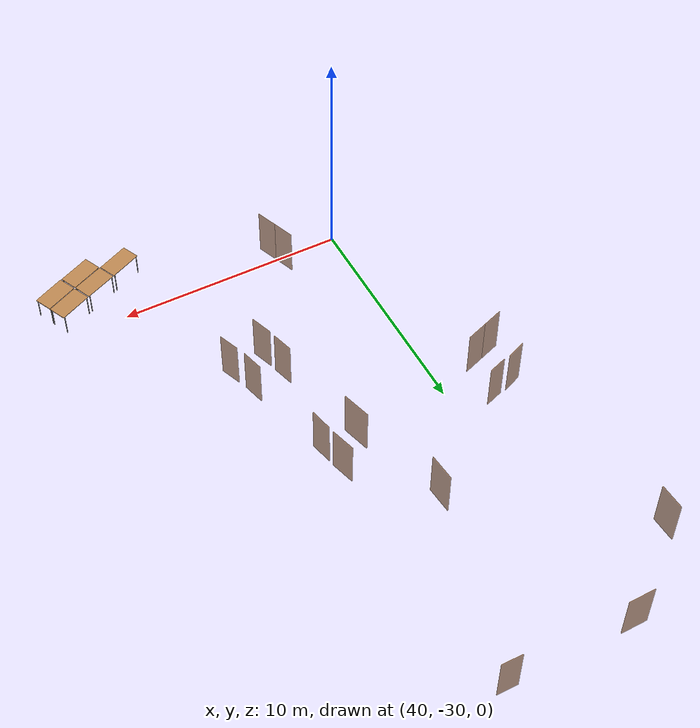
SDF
<sdf version="1.7">
 <world name="world">
  <include><uri>model://sun</uri></include>
  <include>
   <name>OpenRobotics/Table_3</name>
   <uri>model://Table</uri>
   <pose>49.315199858933966 -32.279987743199165 0.0 0 0 0.4303</pose>
   <static>True</static>
  </include>
  <include>
   <name>OpenRobotics/Table_4</name>
   <uri>model://Table</uri>
   <pose>50.718865642363795 -31.653960999048657 0.0 0 0 0.4167</pose>
   <static>True</static>
  </include>
  <include>
   <name>OpenRobotics/Table_5</name>
   <uri>model://Table</uri>
   <pose>52.13243403065564 -31.01780400394735 0.0 0 0 0.4347</pose>
   <static>True</static>
  </include>
  <include>
   <name>OpenRobotics/Table_6</name>
   <uri>model://Table</uri>
   <pose>52.47583815558329 -31.77506871828068 0.0 0 0 0.4389</pose>
   <static>True</static>
  </include>
  <include>
   <name>OpenRobotics/Table_7</name>
   <uri>model://Table</uri>
   <pose>51.06215594424706 -32.41122571338198 0.0 0 0 0.4288</pose>
   <static>True</static>
  </include>
  <model name="D12">
   <pose>47.4111679723613 -24.929295536428306 0.0 0 0 -1.2067744343242672</pose>
   <link name="right">
    <pose>0 0 1.11 0 0 0</pose>
    <visual name="right_visual">
     <geometry><box><size>0.9337420534150855 0.03 2.2</size></box></geometry>
     <material><ambient>0.5 0.25 0 0.6</ambient><diffuse>0.5 0.25 0 0.6</diffuse></material>
    </visual>
    <collision name="right_collision">
     <geometry><box><size>0.9337420534150855 0.03 2.2</size></box></geometry>
     <surface><contact><collide_bitmask>0x02</collide_bitmask></contact></surface>
    </collision>
    <inertial>
     <mass>50.0</mass>
     <inertia><ixx>20.17041666666667</ixx><iyy>23.79947592631592</iyy><izz>3.6365592596492524</izz></inertia>
    </inertial>
   </link>
   <joint name="right_joint" type="revolute">
    <parent>world</parent>
    <child>right</child>
    <axis><xyz>0 0 1</xyz><limit><lower>0</lower><upper>1.57</upper></limit></axis>
    <pose>0.4718710267075428 0 0 0 0 0</pose>
   </joint>
   <plugin name="door_D12" filename="libdoor.so">
    <v_max_door>0.5</v_max_door>
    <a_max_door>0.3</a_max_door>
    <a_nom_door>0.15</a_nom_door>
    <dx_min_door>0.01</dx_min_door>
    <f_max_door>500.0</f_max_door>
    <door name="D12" type="SwingDoor" left_joint_name="empty_joint" right_joint_name="right_joint"/>
   </plugin>
  </model>
  <model name="D13">
   <pose>46.973233809066926 -23.635184433224815 0.0 0 0 -1.3188596632420089</pose>
   <link name="right">
    <pose>0 0 1.11 0 0 0</pose>
    <visual name="right_visual">
     <geometry><box><size>0.985860510775004 0.03 2.2</size></box></geometry>
     <material><ambient>0.5 0.25 0 0.6</ambient><diffuse>0.5 0.25 0 0.6</diffuse></material>
    </visual>
    <collision name="right_collision">
     <geometry><box><size>0.985860510775004 0.03 2.2</size></box></geometry>
     <surface><contact><collide_bitmask>0x02</collide_bitmask></contact></surface>
    </collision>
    <inertial>
     <mass>50.0</mass>
     <inertia><ixx>20.17041666666667</ixx><iyy>24.216337277939804</iyy><izz>4.0534206112731335</izz></inertia>
    </inertial>
   </link>
   <joint name="right_joint" type="revolute">
    <parent>world</parent>
    <child>right</child>
    <axis><xyz>0 0 -1</xyz><limit><lower>0</lower><upper>1.57</upper></limit></axis>
    <pose>0.497930255387502 0 0 0 0 0</pose>
   </joint>
   <plugin name="door_D13" filename="libdoor.so">
    <v_max_door>0.5</v_max_door>
    <a_max_door>0.3</a_max_door>
    <a_nom_door>0.15</a_nom_door>
    <dx_min_door>0.01</dx_min_door>
    <f_max_door>500.0</f_max_door>
    <door name="D13" type="SwingDoor" left_joint_name="empty_joint" right_joint_name="right_joint"/>
   </plugin>
  </model>
  <model name="D14">
   <pose>45.88867093058727 -19.64619893101998 0.0 0 0 -1.3543970765350073</pose>
   <link name="right">
    <pose>0 0 1.11 0 0 0</pose>
    <visual name="right_visual">
     <geometry><box><size>0.9908553430227147 0.03 2.2</size></box></geometry>
     <material><ambient>0.5 0.25 0 0.6</ambient><diffuse>0.5 0.25 0 0.6</diffuse></material>
    </visual>
    <collision name="right_collision">
     <geometry><box><size>0.9908553430227147 0.03 2.2</size></box></geometry>
     <surface><contact><collide_bitmask>0x02</collide_bitmask></contact></surface>
    </collision>
    <inertial>
     <mass>50.0</mass>
     <inertia><ixx>20.17041666666667</ixx><iyy>24.2574762949861</iyy><izz>4.094559628319424</izz></inertia>
    </inertial>
   </link>
   <joint name="right_joint" type="revolute">
    <parent>world</parent>
    <child>right</child>
    <axis><xyz>0 0 1</xyz><limit><lower>0</lower><upper>1.57</upper></limit></axis>
    <pose>0.5004276715113574 0 0 0 0 0</pose>
   </joint>
   <plugin name="door_D14" filename="libdoor.so">
    <v_max_door>0.5</v_max_door>
    <a_max_door>0.3</a_max_door>
    <a_nom_door>0.15</a_nom_door>
    <dx_min_door>0.01</dx_min_door>
    <f_max_door>500.0</f_max_door>
    <door name="D14" type="SwingDoor" left_joint_name="empty_joint" right_joint_name="right_joint"/>
   </plugin>
  </model>
  <model name="D15">
   <pose>45.58960088144991 -18.396364992084592 0.0 0 0 -1.296644167364205</pose>
   <link name="right">
    <pose>0 0 1.11 0 0 0</pose>
    <visual name="right_visual">
     <geometry><box><size>1.1096018485833443 0.03 2.2</size></box></geometry>
     <material><ambient>0.5 0.25 0 0.6</ambient><diffuse>0.5 0.25 0 0.6</diffuse></material>
    </visual>
    <collision name="right_collision">
     <geometry><box><size>1.1096018485833443 0.03 2.2</size></box></geometry>
     <surface><contact><collide_bitmask>0x02</collide_bitmask></contact></surface>
    </collision>
    <inertial>
     <mass>50.0</mass>
     <inertia><ixx>20.17041666666667</ixx><iyy>25.296734426581565</iyy><izz>5.133817759914896</izz></inertia>
    </inertial>
   </link>
   <joint name="right_joint" type="revolute">
    <parent>world</parent>
    <child>right</child>
    <axis><xyz>0 0 -1</xyz><limit><lower>0</lower><upper>1.57</upper></limit></axis>
    <pose>0.5598009242916722 0 0 0 0 0</pose>
   </joint>
   <plugin name="door_D15" filename="libdoor.so">
    <v_max_door>0.5</v_max_door>
    <a_max_door>0.3</a_max_door>
    <a_nom_door>0.15</a_nom_door>
    <dx_min_door>0.01</dx_min_door>
    <f_max_door>500.0</f_max_door>
    <door name="D15" type="SwingDoor" left_joint_name="empty_joint" right_joint_name="right_joint"/>
   </plugin>
  </model>
  <model name="D16">
   <pose>42.83855481004161 -15.480446240875924 0.0 0 0 -1.4795248715580727</pose>
   <link name="right">
    <pose>0 0 1.11 0 0 0</pose>
    <visual name="right_visual">
     <geometry><box><size>1.1863654958117862 0.03 2.2</size></box></geometry>
     <material><ambient>0.5 0.25 0 0.6</ambient><diffuse>0.5 0.25 0 0.6</diffuse></material>
    </visual>
    <collision name="right_collision">
     <geometry><box><size>1.1863654958117862 0.03 2.2</size></box></geometry>
     <surface><contact><collide_bitmask>0x02</collide_bitmask></contact></surface>
    </collision>
    <inertial>
     <mass>50.0</mass>
     <inertia><ixx>20.17041666666667</ixx><iyy>26.031096206886446</iyy><izz>5.8681795402197725</izz></inertia>
    </inertial>
   </link>
   <joint name="right_joint" type="revolute">
    <parent>world</parent>
    <child>right</child>
    <axis><xyz>0 0 1</xyz><limit><lower>0</lower><upper>1.57</upper></limit></axis>
    <pose>0.5981827479058931 0 0 0 0 0</pose>
   </joint>
   <plugin name="door_D16" filename="libdoor.so">
    <v_max_door>0.5</v_max_door>
    <a_max_door>0.3</a_max_door>
    <a_nom_door>0.15</a_nom_door>
    <dx_min_door>0.01</dx_min_door>
    <f_max_door>500.0</f_max_door>
    <door name="D16" type="SwingDoor" left_joint_name="empty_joint" right_joint_name="right_joint"/>
   </plugin>
  </model>
  <model name="D17">
   <pose>44.32724640763151 -19.63549956484723 0.0 0 0 1.8422869865588756</pose>
   <link name="right">
    <pose>0 0 1.11 0 0 0</pose>
    <visual name="right_visual">
     <geometry><box><size>1.2896570405738117 0.03 2.2</size></box></geometry>
     <material><ambient>0.5 0.25 0 0.6</ambient><diffuse>0.5 0.25 0 0.6</diffuse></material>
    </visual>
    <collision name="right_collision">
     <geometry><box><size>1.2896570405738117 0.03 2.2</size></box></geometry>
     <surface><contact><collide_bitmask>0x02</collide_bitmask></contact></surface>
    </collision>
    <inertial>
     <mass>50.0</mass>
     <inertia><ixx>20.17041666666667</ixx><iyy>27.09673034292335</iyy><izz>6.933813676256676</izz></inertia>
    </inertial>
   </link>
   <joint name="right_joint" type="revolute">
    <parent>world</parent>
    <child>right</child>
    <axis><xyz>0 0 -1</xyz><limit><lower>0</lower><upper>1.57</upper></limit></axis>
    <pose>0.6498285202869059 0 0 0 0 0</pose>
   </joint>
   <plugin name="door_D17" filename="libdoor.so">
    <v_max_door>0.5</v_max_door>
    <a_max_door>0.3</a_max_door>
    <a_nom_door>0.15</a_nom_door>
    <dx_min_door>0.01</dx_min_door>
    <f_max_door>500.0</f_max_door>
    <door name="D17" type="SwingDoor" left_joint_name="empty_joint" right_joint_name="right_joint"/>
   </plugin>
  </model>
  <model name="D18">
   <pose>45.47509489879256 -23.926116134688215 0.0 0 0 1.8423285281827253</pose>
   <link name="right">
    <pose>0 0 1.11 0 0 0</pose>
    <visual name="right_visual">
     <geometry><box><size>0.9580193886466375 0.03 2.2</size></box></geometry>
     <material><ambient>0.5 0.25 0 0.6</ambient><diffuse>0.5 0.25 0 0.6</diffuse></material>
    </visual>
    <collision name="right_collision">
     <geometry><box><size>0.9580193886466375 0.03 2.2</size></box></geometry>
     <surface><contact><collide_bitmask>0x02</collide_bitmask></contact></surface>
    </collision>
    <inertial>
     <mass>50.0</mass>
     <inertia><ixx>20.17041666666667</ixx><iyy>23.99083812092866</iyy><izz>3.827921454261988</izz></inertia>
    </inertial>
   </link>
   <joint name="right_joint" type="revolute">
    <parent>world</parent>
    <child>right</child>
    <axis><xyz>0 0 1</xyz><limit><lower>0</lower><upper>1.57</upper></limit></axis>
    <pose>0.48400969432331875 0 0 0 0 0</pose>
   </joint>
   <plugin name="door_D18" filename="libdoor.so">
    <v_max_door>0.5</v_max_door>
    <a_max_door>0.3</a_max_door>
    <a_nom_door>0.15</a_nom_door>
    <dx_min_door>0.01</dx_min_door>
    <f_max_door>500.0</f_max_door>
    <door name="D18" type="SwingDoor" left_joint_name="empty_joint" right_joint_name="right_joint"/>
   </plugin>
  </model>
  <model name="D19">
   <pose>45.829995151203704 -25.132697316755024 0.0 0 0 1.9038844260786403</pose>
   <link name="right">
    <pose>0 0 1.11 0 0 0</pose>
    <visual name="right_visual">
     <geometry><box><size>0.9964211250376829 0.03 2.2</size></box></geometry>
     <material><ambient>0.5 0.25 0 0.6</ambient><diffuse>0.5 0.25 0 0.6</diffuse></material>
    </visual>
    <collision name="right_collision">
     <geometry><box><size>0.9964211250376829 0.03 2.2</size></box></geometry>
     <surface><contact><collide_bitmask>0x02</collide_bitmask></contact></surface>
    </collision>
    <inertial>
     <mass>50.0</mass>
     <inertia><ixx>20.17041666666667</ixx><iyy>24.303562743422344</iyy><izz>4.140646076755674</izz></inertia>
    </inertial>
   </link>
   <joint name="right_joint" type="revolute">
    <parent>world</parent>
    <child>right</child>
    <axis><xyz>0 0 -1</xyz><limit><lower>0</lower><upper>1.57</upper></limit></axis>
    <pose>0.5032105625188414 0 0 0 0 0</pose>
   </joint>
   <plugin name="door_D19" filename="libdoor.so">
    <v_max_door>0.5</v_max_door>
    <a_max_door>0.3</a_max_door>
    <a_nom_door>0.15</a_nom_door>
    <dx_min_door>0.01</dx_min_door>
    <f_max_door>500.0</f_max_door>
    <door name="D19" type="SwingDoor" left_joint_name="empty_joint" right_joint_name="right_joint"/>
   </plugin>
  </model>
  <model name="D28">
   <pose>35.82728292164471 -10.276911943496913 0.0 0 0 1.6268911847432377</pose>
   <link name="right">
    <pose>0 0 1.11 0 0 0</pose>
    <visual name="right_visual">
     <geometry><box><size>1.1228414429880713 0.03 2.2</size></box></geometry>
     <material><ambient>0.5 0.25 0 0.6</ambient><diffuse>0.5 0.25 0 0.6</diffuse></material>
    </visual>
    <collision name="right_collision">
     <geometry><box><size>1.1228414429880713 0.03 2.2</size></box></geometry>
     <surface><contact><collide_bitmask>0x02</collide_bitmask></contact></surface>
    </collision>
    <inertial>
     <mass>50.0</mass>
     <inertia><ixx>20.17041666666667</ixx><iyy>25.419887108714732</iyy><izz>5.256970442048059</izz></inertia>
    </inertial>
   </link>
   <joint name="right_joint" type="revolute">
    <parent>world</parent>
    <child>right</child>
    <axis><xyz>0 0 1</xyz><limit><lower>0</lower><upper>1.57</upper></limit></axis>
    <pose>0.5664207214940357 0 0 0 0 0</pose>
   </joint>
   <plugin name="door_D28" filename="libdoor.so">
    <v_max_door>0.5</v_max_door>
    <a_max_door>0.3</a_max_door>
    <a_nom_door>0.15</a_nom_door>
    <dx_min_door>0.01</dx_min_door>
    <f_max_door>500.0</f_max_door>
    <door name="D28" type="SwingDoor" left_joint_name="empty_joint" right_joint_name="right_joint"/>
   </plugin>
  </model>
  <model name="D29">
   <pose>39.288755524619454 -7.233966674747887 0.0 0 0 -3.118114170019577</pose>
   <link name="right">
    <pose>0 0 1.11 0 0 0</pose>
    <visual name="right_visual">
     <geometry><box><size>1.1681655739603571 0.03 2.2</size></box></geometry>
     <material><ambient>0.5 0.25 0 0.6</ambient><diffuse>0.5 0.25 0 0.6</diffuse></material>
    </visual>
    <collision name="right_collision">
     <geometry><box><size>1.1681655739603571 0.03 2.2</size></box></geometry>
     <surface><contact><collide_bitmask>0x02</collide_bitmask></contact></surface>
    </collision>
    <inertial>
     <mass>50.0</mass>
     <inertia><ixx>20.17041666666667</ixx><iyy>25.852545034108882</iyy><izz>5.689628367442211</izz></inertia>
    </inertial>
   </link>
   <joint name="right_joint" type="revolute">
    <parent>world</parent>
    <child>right</child>
    <axis><xyz>0 0 1</xyz><limit><lower>0</lower><upper>1.57</upper></limit></axis>
    <pose>0.5890827869801786 0 0 0 0 0</pose>
   </joint>
   <plugin name="door_D29" filename="libdoor.so">
    <v_max_door>0.5</v_max_door>
    <a_max_door>0.3</a_max_door>
    <a_nom_door>0.15</a_nom_door>
    <dx_min_door>0.01</dx_min_door>
    <f_max_door>500.0</f_max_door>
    <door name="D29" type="SwingDoor" left_joint_name="empty_joint" right_joint_name="right_joint"/>
   </plugin>
  </model>
  <model name="D30">
   <pose>44.790961490480456 -7.2198526172434025 0.0 0 0 3.1409787047474826</pose>
   <link name="right">
    <pose>0 0 1.11 0 0 0</pose>
    <visual name="right_visual">
     <geometry><box><size>0.9169750482241364 0.03 2.2</size></box></geometry>
     <material><ambient>0.5 0.25 0 0.6</ambient><diffuse>0.5 0.25 0 0.6</diffuse></material>
    </visual>
    <collision name="right_collision">
     <geometry><box><size>0.9169750482241364 0.03 2.2</size></box></geometry>
     <surface><contact><collide_bitmask>0x02</collide_bitmask></contact></surface>
    </collision>
    <inertial>
     <mass>50.0</mass>
     <inertia><ixx>20.17041666666667</ixx><iyy>23.670180162773576</iyy><izz>3.5072634961069062</izz></inertia>
    </inertial>
   </link>
   <joint name="right_joint" type="revolute">
    <parent>world</parent>
    <child>right</child>
    <axis><xyz>0 0 1</xyz><limit><lower>0</lower><upper>1.57</upper></limit></axis>
    <pose>0.4634875241120682 0 0 0 0 0</pose>
   </joint>
   <plugin name="door_D30" filename="libdoor.so">
    <v_max_door>0.5</v_max_door>
    <a_max_door>0.3</a_max_door>
    <a_nom_door>0.15</a_nom_door>
    <dx_min_door>0.01</dx_min_door>
    <f_max_door>500.0</f_max_door>
    <door name="D30" type="SwingDoor" left_joint_name="empty_joint" right_joint_name="right_joint"/>
   </plugin>
  </model>
  <model name="D39">
   <pose>37.21114349535051 -19.149816634430827 0.0 0 0 -2.747546719460217</pose>
   <link name="right">
    <pose>0 0 1.11 0 0 0</pose>
    <visual name="right_visual">
     <geometry><box><size>0.8829682980371252 0.03 2.2</size></box></geometry>
     <material><ambient>0.5 0.25 0 0.6</ambient><diffuse>0.5 0.25 0 0.6</diffuse></material>
    </visual>
    <collision name="right_collision">
     <geometry><box><size>0.8829682980371252 0.03 2.2</size></box></geometry>
     <surface><contact><collide_bitmask>0x02</collide_bitmask></contact></surface>
    </collision>
    <inertial>
     <mass>50.0</mass>
     <inertia><ixx>20.17041666666667</ixx><iyy>23.415137563910747</iyy><izz>3.252220897244073</izz></inertia>
    </inertial>
   </link>
   <joint name="right_joint" type="revolute">
    <parent>world</parent>
    <child>right</child>
    <axis><xyz>0 0 1</xyz><limit><lower>0</lower><upper>1.57</upper></limit></axis>
    <pose>0.4464841490185626 0 0 0 0 0</pose>
   </joint>
   <plugin name="door_D39" filename="libdoor.so">
    <v_max_door>0.5</v_max_door>
    <a_max_door>0.3</a_max_door>
    <a_nom_door>0.15</a_nom_door>
    <dx_min_door>0.01</dx_min_door>
    <f_max_door>500.0</f_max_door>
    <door name="D39" type="SwingDoor" left_joint_name="empty_joint" right_joint_name="right_joint"/>
   </plugin>
  </model>
  <model name="D40">
   <pose>38.28756802615621 -18.813867918910788 0.0 0 0 0.34049278085755447</pose>
   <link name="right">
    <pose>0 0 1.11 0 0 0</pose>
    <visual name="right_visual">
     <geometry><box><size>0.8369797592231524 0.03 2.2</size></box></geometry>
     <material><ambient>0.5 0.25 0 0.6</ambient><diffuse>0.5 0.25 0 0.6</diffuse></material>
    </visual>
    <collision name="right_collision">
     <geometry><box><size>0.8369797592231524 0.03 2.2</size></box></geometry>
     <surface><contact><collide_bitmask>0x02</collide_bitmask></contact></surface>
    </collision>
    <inertial>
     <mass>50.0</mass>
     <inertia><ixx>20.17041666666667</ixx><iyy>23.085562988955196</iyy><izz>2.922646322288526</izz></inertia>
    </inertial>
   </link>
   <joint name="right_joint" type="revolute">
    <parent>world</parent>
    <child>right</child>
    <axis><xyz>0 0 1</xyz><limit><lower>0</lower><upper>1.57</upper></limit></axis>
    <pose>0.4234898796115762 0 0 0 0 0</pose>
   </joint>
   <plugin name="door_D40" filename="libdoor.so">
    <v_max_door>0.5</v_max_door>
    <a_max_door>0.3</a_max_door>
    <a_nom_door>0.15</a_nom_door>
    <dx_min_door>0.01</dx_min_door>
    <f_max_door>500.0</f_max_door>
    <door name="D40" type="SwingDoor" left_joint_name="empty_joint" right_joint_name="right_joint"/>
   </plugin>
  </model>
  <model name="DH3">
   <pose>42.76673246903089 -30.078593153155005 0.0 0 0 -1.214222683210574</pose>
   <link name="right">
    <pose>0.4835757079634831 0 1.11 0 0 0</pose>
    <visual name="right_visual">
     <geometry><box><size>0.9571514159269662 0.03 2.2</size></box></geometry>
     <material><ambient>0.5 0.25 0 0.6</ambient><diffuse>0.5 0.25 0 0.6</diffuse></material>
    </visual>
    <collision name="right_collision">
     <geometry><box><size>0.9571514159269662 0.03 2.2</size></box></geometry>
     <surface><contact><collide_bitmask>0x02</collide_bitmask></contact></surface>
    </collision>
    <inertial>
     <mass>50.0</mass>
     <inertia><ixx>20.17041666666667</ixx><iyy>23.98391180421249</iyy><izz>3.8209951375458178</izz></inertia>
    </inertial>
   </link>
   <joint name="right_joint" type="revolute">
    <parent>world</parent>
    <child>right</child>
    <axis><xyz>0 0 -1</xyz><limit><lower>0</lower><upper>1.57</upper></limit></axis>
    <pose>0.4835757079634831 0 0 0 0 0</pose>
   </joint>
   <link name="left">
    <pose>-0.4835757079634831 0 1.11 0 0 0</pose>
    <visual name="left_visual">
     <geometry><box><size>0.9571514159269662 0.03 2.2</size></box></geometry>
     <material><ambient>0.5 0.25 0 0.6</ambient><diffuse>0.5 0.25 0 0.6</diffuse></material>
    </visual>
    <collision name="left_collision">
     <geometry><box><size>0.9571514159269662 0.03 2.2</size></box></geometry>
     <surface><contact><collide_bitmask>0x02</collide_bitmask></contact></surface>
    </collision>
    <inertial>
     <mass>50.0</mass>
     <inertia><ixx>20.17041666666667</ixx><iyy>23.98391180421249</iyy><izz>3.8209951375458178</izz></inertia>
    </inertial>
   </link>
   <joint name="left_joint" type="revolute">
    <parent>world</parent>
    <child>left</child>
    <axis><xyz>0 0 -1</xyz><limit><lower>-1.57</lower><upper>0</upper></limit></axis>
    <pose>-0.4835757079634831 0 0 0 0 0</pose>
   </joint>
   <plugin name="door_DH3" filename="libdoor.so">
    <v_max_door>0.5</v_max_door>
    <a_max_door>0.3</a_max_door>
    <a_nom_door>0.15</a_nom_door>
    <dx_min_door>0.01</dx_min_door>
    <f_max_door>500.0</f_max_door>
    <door name="DH3" type="DoubleSwingDoor" left_joint_name="left_joint" right_joint_name="right_joint"/>
   </plugin>
  </model>
  <model name="DH6">
   <pose>37.63866285008311 -20.901951668263703 0.0 0 0 0.3456728151720172</pose>
   <link name="right">
    <pose>0.48415894060559683 0 1.11 0 0 0</pose>
    <visual name="right_visual">
     <geometry><box><size>0.9583178812111937 0.03 2.2</size></box></geometry>
     <material><ambient>0.5 0.25 0 0.6</ambient><diffuse>0.5 0.25 0 0.6</diffuse></material>
    </visual>
    <collision name="right_collision">
     <geometry><box><size>0.9583178812111937 0.03 2.2</size></box></geometry>
     <surface><contact><collide_bitmask>0x02</collide_bitmask></contact></surface>
    </collision>
    <inertial>
     <mass>50.0</mass>
     <inertia><ixx>20.17041666666667</ixx><iyy>23.99322150603797</iyy><izz>3.830304839371298</izz></inertia>
    </inertial>
   </link>
   <joint name="right_joint" type="revolute">
    <parent>world</parent>
    <child>right</child>
    <axis><xyz>0 0 -1</xyz><limit><lower>0</lower><upper>1.57</upper></limit></axis>
    <pose>0.48415894060559683 0 0 0 0 0</pose>
   </joint>
   <link name="left">
    <pose>-0.48415894060559683 0 1.11 0 0 0</pose>
    <visual name="left_visual">
     <geometry><box><size>0.9583178812111937 0.03 2.2</size></box></geometry>
     <material><ambient>0.5 0.25 0 0.6</ambient><diffuse>0.5 0.25 0 0.6</diffuse></material>
    </visual>
    <collision name="left_collision">
     <geometry><box><size>0.9583178812111937 0.03 2.2</size></box></geometry>
     <surface><contact><collide_bitmask>0x02</collide_bitmask></contact></surface>
    </collision>
    <inertial>
     <mass>50.0</mass>
     <inertia><ixx>20.17041666666667</ixx><iyy>23.99322150603797</iyy><izz>3.830304839371298</izz></inertia>
    </inertial>
   </link>
   <joint name="left_joint" type="revolute">
    <parent>world</parent>
    <child>left</child>
    <axis><xyz>0 0 -1</xyz><limit><lower>-1.57</lower><upper>0</upper></limit></axis>
    <pose>-0.48415894060559683 0 0 0 0 0</pose>
   </joint>
   <plugin name="door_DH6" filename="libdoor.so">
    <v_max_door>0.5</v_max_door>
    <a_max_door>0.3</a_max_door>
    <a_nom_door>0.15</a_nom_door>
    <dx_min_door>0.01</dx_min_door>
    <f_max_door>500.0</f_max_door>
    <door name="DH6" type="DoubleSwingDoor" left_joint_name="left_joint" right_joint_name="right_joint"/>
   </plugin>
  </model>
 </world>
</sdf>
